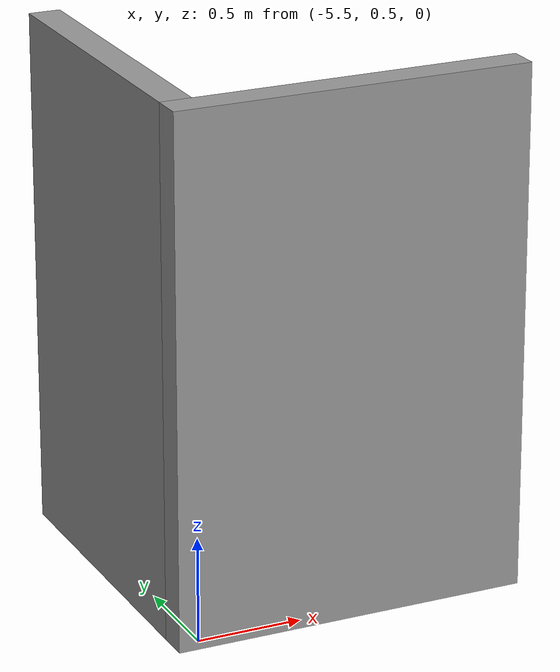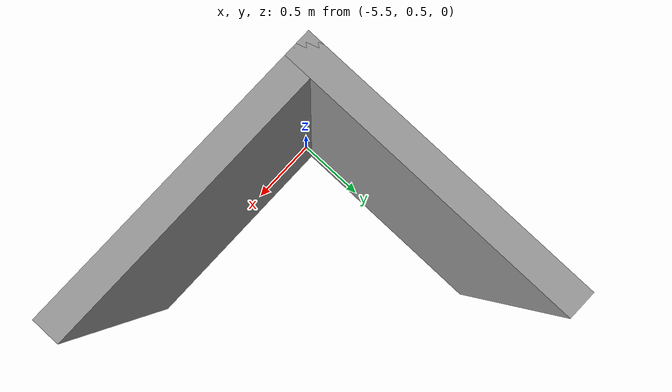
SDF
<?xml version='1.0'?>
<sdf version='1.6'>
  <model name='test_01'>
    <pose frame=''>-4.775 1.25 0 0 -0 0</pose>
    <link name='Wall_0'>
      <collision name='Wall_0_Collision'>
        <geometry>
          <box>
            <size>1.7 0.15 2.5</size>
          </box>
        </geometry>
        <pose frame=''>0 0 1.25 0 -0 0</pose>
      </collision>
      <visual name='Wall_0_Visual'>
        <pose frame=''>0 0 1.25 0 -0 0</pose>
        <geometry>
          <box>
            <size>1.7 0.15 2.5</size>
          </box>
        </geometry>
        <material>
          <script>
            <uri>file://media/materials/scripts/gazebo.material</uri>
            <name>Gazebo/Grey</name>
          </script>
          <ambient>1 1 1 1</ambient>
        </material>
        <meta>
          <layer>0</layer>
        </meta>
      </visual>
      <pose frame=''>0 -0.75 0 0 -0 0</pose>
    </link>
    <link name='Wall_2'>
      <collision name='Wall_2_Collision'>
        <geometry>
          <box>
            <size>1.65 0.15 2.5</size>
          </box>
        </geometry>
        <pose frame=''>0 0 1.25 0 -0 0</pose>
      </collision>
      <visual name='Wall_2_Visual'>
        <pose frame=''>0 0 1.25 0 -0 0</pose>
        <geometry>
          <box>
            <size>1.65 0.15 2.5</size>
          </box>
        </geometry>
        <material>
          <script>
            <uri>file://media/materials/scripts/gazebo.material</uri>
            <name>Gazebo/Grey</name>
          </script>
          <ambient>1 1 1 1</ambient>
        </material>
        <meta>
          <layer>0</layer>
        </meta>
      </visual>
      <pose frame=''>-0.775 0 0 0 -0 1.5708</pose>
    </link>
    <static>1</static>
  </model>
</sdf>
